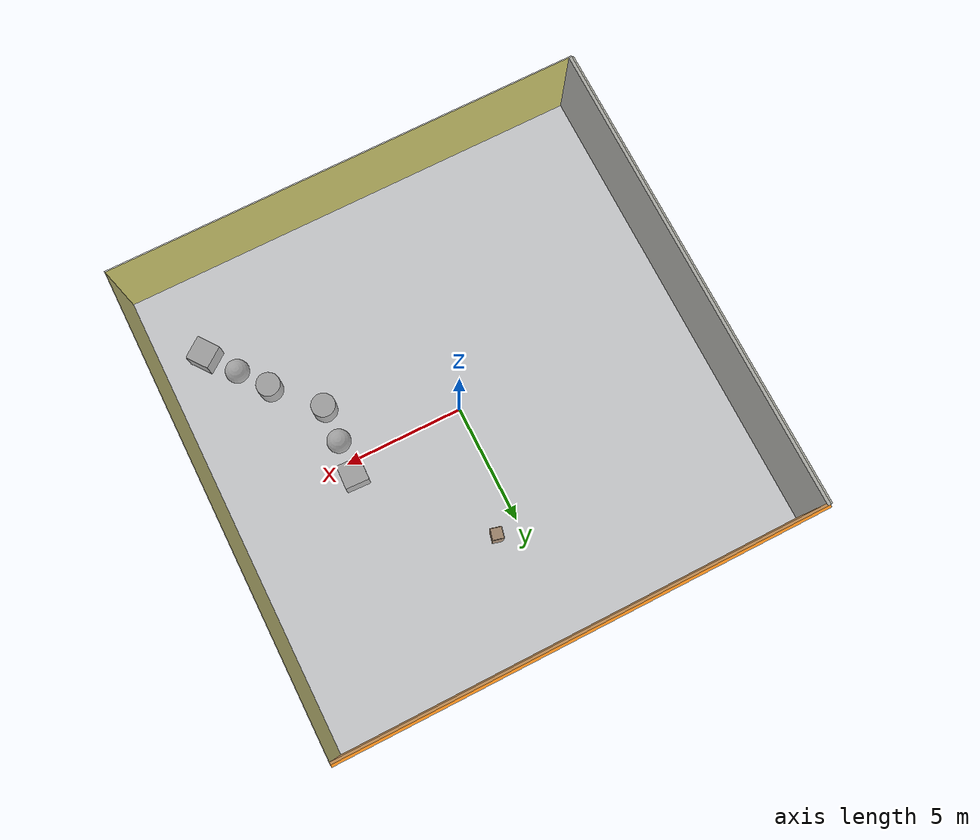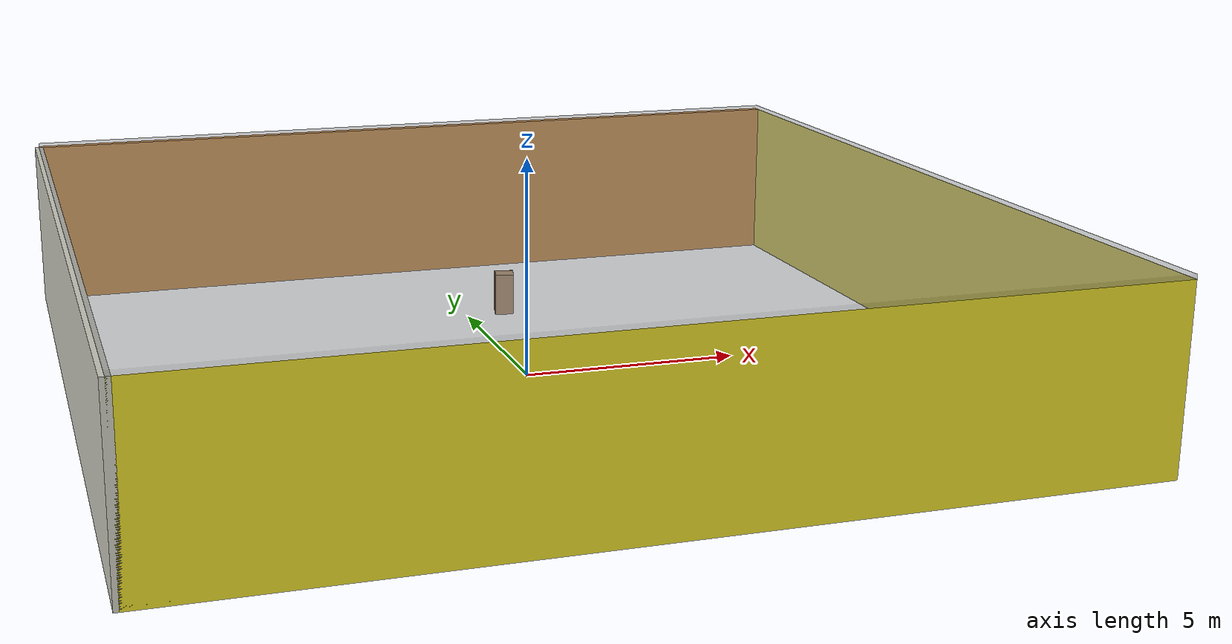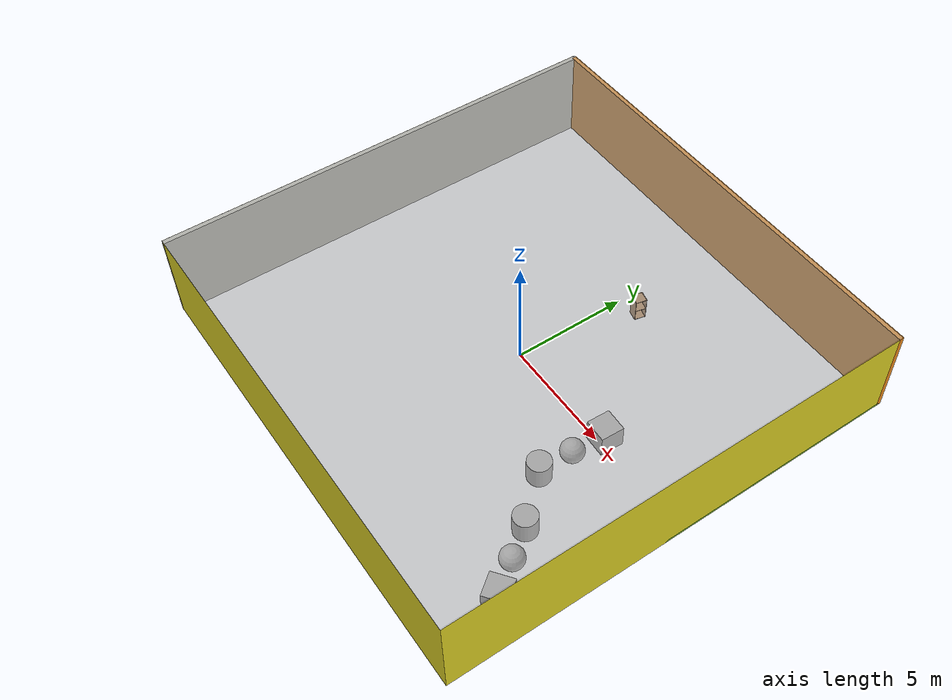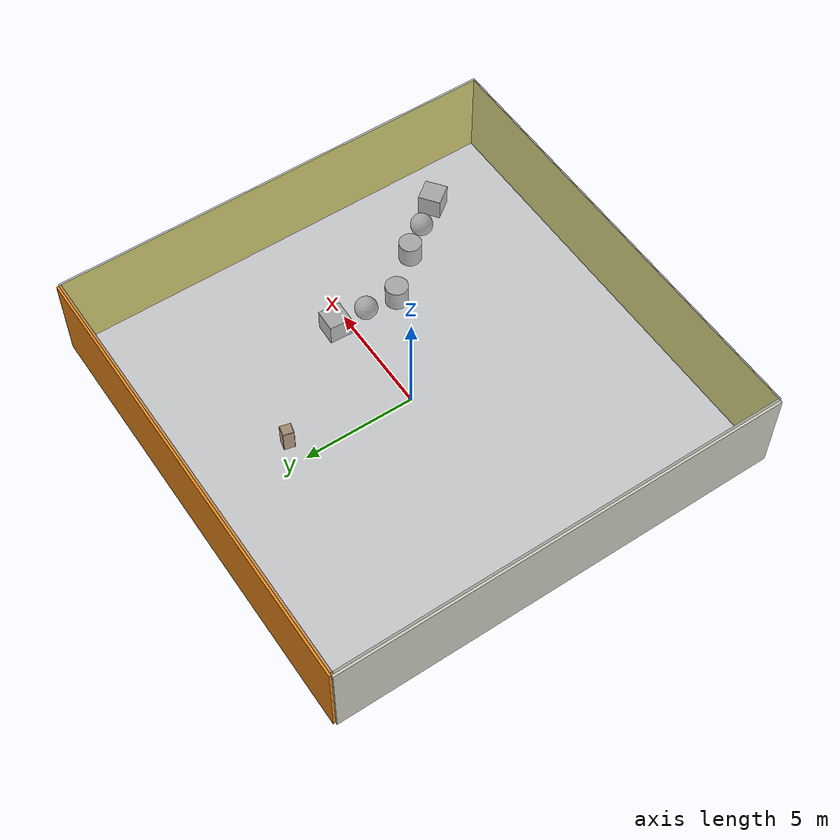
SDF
<sdf version="1.4">
 <world name="default">
  <physics type="ode">
   <max_step_size>0.001</max_step_size>
   <real_time_factor>1</real_time_factor>
   <real_time_update_rate>1000</real_time_update_rate>
   <gravity>0 0 -9.8</gravity>
  </physics>
  <scene><ambient>0.4 0.4 0.4 1</ambient><background>0.7 0.7 0.7 1</background><shadows>1</shadows></scene>
  <model name="Surrounding">
   <static>1</static>
   <link name="Ceiling">
    <collision name="Ceiling_Collision"><geometry><box><size>20 20 0.1</size></box></geometry></collision>
    <visual name="Ceiling_Visual">
     <geometry><box><size>20 20 0.1</size></box></geometry>
     <material>
      <script><uri>file://media/materials/scripts/gazebo.material</uri><name>Gazebo/GreyTransparent</name></script>
     </material>
    </visual>
    <pose>0 0 4.05 0 0 0</pose>
   </link>
   <link name="Wall_South">
    <collision name="Wall_South_Collision">
     <geometry><box><size>20 0 4</size></box></geometry>
     <pose>0 0 2 0 -0 0</pose>
    </collision>
    <visual name="Wall_South_Visual">
     <pose>0 0 2 0 -0 0</pose>
     <geometry><box><size>20 0 4</size></box></geometry>
     <material>
      <script><uri>file://media/materials/scripts/gazebo.material</uri><name>Gazebo/Yellow</name></script>
     </material>
    </visual>
    <velocity_decay><linear>0</linear><angular>0</angular></velocity_decay>
    <pose>0 -10 0 0 -0 0</pose>
   </link>
   <link name="Wall_East">
    <collision name="Wall_21_Collision">
     <geometry><box><size>20 0 4</size></box></geometry>
     <pose>0 0 2 0 -0 0</pose>
    </collision>
    <visual name="Wall_21_Visual">
     <pose>0 0 2 0 -0 0</pose>
     <geometry><box><size>20 0 4</size></box></geometry>
     <material>
      <script><uri>file://media/materials/scripts/gazebo.material</uri><name>Gazebo/YellowGlow</name></script>
     </material>
    </visual>
    <velocity_decay><linear>0</linear><angular>0</angular></velocity_decay>
    <pose>10 0 0 0 -0 1.5708</pose>
   </link>
   <link name="Wall_North">
    <collision name="Wall_22_Collision">
     <geometry><box><size>20 0.2 4</size></box></geometry>
     <pose>0 0 2 0 -0 0</pose>
    </collision>
    <visual name="Wall_22_Visual">
     <pose>0 0 2 0 -0 0</pose>
     <geometry><box><size>20 0.2 4</size></box></geometry>
     <material>
      <script><uri>file://media/materials/scripts/gazebo.material</uri><name>Gazebo/Orange</name></script>
     </material>
    </visual>
    <velocity_decay><linear>0</linear><angular>0</angular></velocity_decay>
    <pose>0 10 0 0 -0 0</pose>
   </link>
   <link name="Wall_West">
    <collision name="Wall_23_Collision">
     <geometry><box><size>20 0.2 4</size></box></geometry>
     <pose>0 0 2 0 -0 0</pose>
    </collision>
    <visual name="Wall_23_Visual">
     <pose>0 0 2 0 -0 0</pose>
     <geometry><box><size>20 0.2 4</size></box></geometry>
     <material>
      <script><uri>file://media/materials/scripts/gazebo.material</uri><name>Gazebo/PaintedWall</name></script>
     </material>
    </visual>
    <velocity_decay><linear>0</linear><angular>0</angular></velocity_decay>
    <pose>-10 0 0 0 0 -1.5708</pose>
   </link>
   <link name="Ground_link">
    <collision name="collision">
     <pose>0 0 .05 0 -0 0</pose>
     <geometry><box><size>20 20 0.1</size></box></geometry>
    </collision>
    <visual name="visual">
     <pose>0 0 .05 0 -0 0</pose>
     <geometry><box><size>20 20 0.1</size></box></geometry>
     <material>
      <script><uri>file://media/materials/scripts/gazebo.material</uri><name>Gazebo/GreenTransparent</name></script>
     </material>
    </visual>
   </link>
   <static>1</static>
  </model>
  <spherical_coordinates>
   <surface_model>EARTH_WGS84</surface_model>
   <latitude_deg>0</latitude_deg>
   <longitude_deg>0</longitude_deg>
   <elevation>0</elevation>
   <heading_deg>0</heading_deg>
  </spherical_coordinates>
  <light name="lightball_0" type="diffuse">
   <diffuse>0.8 0.8 0.8 1</diffuse>
   <specular>0.2 0.2 0.2 1</specular>
   <attenuation>
    <range>100</range>
    <constant>0.7</constant>
    <linear>0.01</linear>
    <quadratic>0.001</quadratic>
   </attenuation>
   <direction>-0.5 0.1 -0.9</direction>
   <pose>4.60251158934 8.21152684923 3.02824911476 0 0 0</pose>
  </light>
  <light name="lightball_1" type="diffuse">
   <diffuse>0.8 0.8 0.8 1</diffuse>
   <specular>0.2 0.2 0.2 1</specular>
   <attenuation>
    <range>100</range>
    <constant>0.7</constant>
    <linear>0.01</linear>
    <quadratic>0.001</quadratic>
   </attenuation>
   <direction>-0.5 0.1 -0.9</direction>
   <pose>2.30812771976 9.21851405827 3.70482765591 0 0 0</pose>
  </light>
  <light name="lightball_2" type="diffuse">
   <diffuse>0.8 0.8 0.8 1</diffuse>
   <specular>0.2 0.2 0.2 1</specular>
   <attenuation>
    <range>100</range>
    <constant>0.7</constant>
    <linear>0.01</linear>
    <quadratic>0.001</quadratic>
   </attenuation>
   <direction>-0.5 0.1 -0.9</direction>
   <pose>4.779148598 9.22614431911 1.0021228502 0 0 0</pose>
  </light>
  <light name="lightball_3" type="diffuse">
   <diffuse>0.8 0.8 0.8 1</diffuse>
   <specular>0.2 0.2 0.2 1</specular>
   <attenuation>
    <range>100</range>
    <constant>0.7</constant>
    <linear>0.01</linear>
    <quadratic>0.001</quadratic>
   </attenuation>
   <direction>-0.5 0.1 -0.9</direction>
   <pose>5.35242984814 -8.96708620782 2.67194139498 0 0 0</pose>
  </light>
  <light name="lightball_4" type="diffuse">
   <diffuse>0.8 0.8 0.8 1</diffuse>
   <specular>0.2 0.2 0.2 1</specular>
   <attenuation>
    <range>100</range>
    <constant>0.7</constant>
    <linear>0.01</linear>
    <quadratic>0.001</quadratic>
   </attenuation>
   <direction>-0.5 0.1 -0.9</direction>
   <pose>-0.101368413506 -0.697186795732 1.15822376176 0 0 0</pose>
  </light>
  <light name="lightball_5" type="diffuse">
   <diffuse>0.8 0.8 0.8 1</diffuse>
   <specular>0.2 0.2 0.2 1</specular>
   <attenuation>
    <range>100</range>
    <constant>0.7</constant>
    <linear>0.01</linear>
    <quadratic>0.001</quadratic>
   </attenuation>
   <direction>-0.5 0.1 -0.9</direction>
   <pose>-8.6591446703 -8.38269159293 2.12978727971 0 0 0</pose>
  </light>
  <light name="lightball_6" type="diffuse">
   <diffuse>0.8 0.8 0.8 1</diffuse>
   <specular>0.2 0.2 0.2 1</specular>
   <attenuation>
    <range>100</range>
    <constant>0.7</constant>
    <linear>0.01</linear>
    <quadratic>0.001</quadratic>
   </attenuation>
   <direction>-0.5 0.1 -0.9</direction>
   <pose>1.21067700168 6.44049193282 3.0605594295 0 0 0</pose>
  </light>
  <light name="lightball_7" type="diffuse">
   <diffuse>0.8 0.8 0.8 1</diffuse>
   <specular>0.2 0.2 0.2 1</specular>
   <attenuation>
    <range>100</range>
    <constant>0.7</constant>
    <linear>0.01</linear>
    <quadratic>0.001</quadratic>
   </attenuation>
   <direction>-0.5 0.1 -0.9</direction>
   <pose>5.45595173007 4.4201257225 2.15304164216 0 0 0</pose>
  </light>
  <light name="lightball_8" type="diffuse">
   <diffuse>0.8 0.8 0.8 1</diffuse>
   <specular>0.2 0.2 0.2 1</specular>
   <attenuation>
    <range>100</range>
    <constant>0.7</constant>
    <linear>0.01</linear>
    <quadratic>0.001</quadratic>
   </attenuation>
   <direction>-0.5 0.1 -0.9</direction>
   <pose>0.272736148726 -1.18149514772 0.952905856113 0 0 0</pose>
  </light>
  <light name="lightball_9" type="diffuse">
   <diffuse>0.8 0.8 0.8 1</diffuse>
   <specular>0.2 0.2 0.2 1</specular>
   <attenuation>
    <range>100</range>
    <constant>0.7</constant>
    <linear>0.01</linear>
    <quadratic>0.001</quadratic>
   </attenuation>
   <direction>-0.5 0.1 -0.9</direction>
   <pose>-4.35673607634 9.16949687482 2.06443309486 0 0 0</pose>
  </light>
  <light name="lightball_10" type="diffuse">
   <diffuse>0.8 0.8 0.8 1</diffuse>
   <specular>0.2 0.2 0.2 1</specular>
   <attenuation>
    <range>100</range>
    <constant>0.7</constant>
    <linear>0.01</linear>
    <quadratic>0.001</quadratic>
   </attenuation>
   <direction>-0.5 0.1 -0.9</direction>
   <pose>-0.533083529975 1.23277314363 2.74092762162 0 0 0</pose>
  </light>
  <light name="lightball_11" type="diffuse">
   <diffuse>0.8 0.8 0.8 1</diffuse>
   <specular>0.2 0.2 0.2 1</specular>
   <attenuation>
    <range>100</range>
    <constant>0.7</constant>
    <linear>0.01</linear>
    <quadratic>0.001</quadratic>
   </attenuation>
   <direction>-0.5 0.1 -0.9</direction>
   <pose>3.75721590536 -1.09472509503 1.62224877621 0 0 0</pose>
  </light>
  <include><uri>model://cabinet</uri><pose>1.00654224546 5.21842437124 0 0 0 2.90307749977</pose></include>
  <include>
   <uri>model://textured_shapes</uri>
   <pose>4.89290910482 -1.02446152745 0 0 0 3.09872617501</pose>
  </include>
  <include>
   <uri>model://textured_shapes</uri>
   <pose>7.33911036108 -5.49544878734 0 0 0 0.643137533665</pose>
  </include>
 </world>
</sdf>

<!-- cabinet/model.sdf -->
<sdf version="1.5">
  <model name="cabinet">
    <static>true</static>
    <link name="cabinet_bottom_plate">
      <inertial>
        <pose>0 0 -1 0 0 0</pose>
        <inertia>
          <ixx>2.050000</ixx>
          <ixy>0</ixy>
          <ixz>0</ixz>
          <iyy>2.050000</iyy>
          <iyz>0</iyz>
          <izz>2.050000</izz>
        </inertia>
        <mass>25.000000</mass>
      </inertial>
      <collision name="cabinet_bottom_plate_geom">
        <pose>0 0 0.010000 0 0 0</pose>
        <geometry>
          <box>
            <size>0.450000 0.450000 0.020000</size>
          </box>
        </geometry>
      </collision>
      <visual name="cabinet_bottom_plate_geom_visual">
        <pose>0 0 0.010000 0 0 0</pose>
        <geometry>
          <box>
            <size>0.450000 0.450000 0.020000</size>
          </box>
        </geometry>
        <material>
          <script>
            <uri>model://media/materials/scripts/gazebo.material</uri>
            <name>Gazebo/Wood</name>
          </script>
        </material>
      </visual>
      <collision name="cabinet_bottom_plate_geom_cabinet_back_plate">
        <pose>0.235000 0 0.510000 0 0 0</pose>
        <geometry>
          <box>
            <size>0.020000 0.450000 1.020000</size>
          </box>
        </geometry>
      </collision>
      <visual name="cabinet_bottom_plate_geom_cabinet_back_plate_visual">
        <pose>0.235000 0 0.510000 0 0 0</pose>
        <geometry>
          <box>
            <size>0.020000 0.450000 1.020000</size>
          </box>
        </geometry>
        <material>
          <script>
            <uri>model://media/materials/scripts/gazebo.material</uri>
            <name>Gazebo/Wood</name>
          </script>
        </material>
      </visual>
      <collision name="cabinet_bottom_plate_geom_cabinet_left_plate">
        <pose>0 0.235000 0.510000 0 0 0</pose>
        <geometry>
          <box>
            <size>0.450000 0.020000 1.020000</size>
          </box>
        </geometry>
      </collision>
      <visual name="cabinet_bottom_plate_geom_cabinet_left_plate_visual">
        <pose>0 0.235000 0.510000 0 0 0</pose>
        <geometry>
          <box>
            <size>0.450000 0.020000 1.020000</size>
          </box>
        </geometry>
        <material>
          <script>
            <uri>model://media/materials/scripts/gazebo.material</uri>
            <name>Gazebo/Wood</name>
          </script>
        </material>
      </visual>
      <collision name="cabinet_bottom_plate_geom_cabinet_middle_plate">
        <pose>0 0 0.510000 0 0 0</pose>
        <geometry>
          <box>
            <size>0.450000 0.450000 0.020000</size>
          </box>
        </geometry>
      </collision>
      <visual name="cabinet_bottom_plate_geom_cabinet_middle_plate_visual">
        <pose>0 0 0.510000 0 0 0</pose>
        <geometry>
          <box>
            <size>0.450000 0.450000 0.020000</size>
          </box>
        </geometry>
        <material>
          <script>
            <uri>model://media/materials/scripts/gazebo.material</uri>
            <name>Gazebo/Wood</name>
          </script>
        </material>
      </visual>
      <collision name="cabinet_bottom_plate_geom_cabinet_right_plate">
        <pose>0 -0.235000 0.510000 0 0 0</pose>
        <geometry>
          <box>
            <size>0.450000 0.020000 1.020000</size>
          </box>
        </geometry>
      </collision>
      <visual name="cabinet_bottom_plate_geom_cabinet_right_plate_visual">
        <pose>0 -0.235000 0.510000 0 0 0</pose>
        <geometry>
          <box>
            <size>0.450000 0.020000 1.020000</size>
          </box>
        </geometry>
        <material>
          <script>
            <uri>model://media/materials/scripts/gazebo.material</uri>
            <name>Gazebo/Wood</name>
          </script>
        </material>
      </visual>
      <collision name="cabinet_bottom_plate_geom_cabinet_top_plate">
        <pose>0 0 1.010000 0 0 0</pose>
        <geometry>
          <box>
            <size>0.450000 0.450000 0.020000</size>
          </box>
        </geometry>
      </collision>
      <visual name="cabinet_bottom_plate_geom_cabinet_top_plate_visual">
        <pose>0 0 1.010000 0 0 0</pose>
        <geometry>
          <box>
            <size>0.450000 0.450000 0.020000</size>
          </box>
        </geometry>
        <material>
          <script>
            <uri>model://media/materials/scripts/gazebo.material</uri>
            <name>Gazebo/Wood</name>
          </script>
        </material>
      </visual>
    </link>
  </model>
</sdf>

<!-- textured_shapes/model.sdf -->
<sdf version="1.6">
  <model name="textured_shapes">
    <pose>0 0 0.5 0 0 0</pose>
    <link name="box">
      <pose>0 -1.5 0 0 0 0</pose>
      <collision name="collision">
        <geometry>
          <box>
            <size>1 1 1</size>
          </box>
        </geometry>
      </collision>
      <visual name="visual">
        <geometry>
          <box>
            <size>1 1 1</size>
          </box>
        </geometry>
        <material>
          <script>
            <uri>model://../model_source/models/textured_shapes/materials/scripts</uri>
            <uri>model://../model_source/models/textured_shapes/materials/textures</uri>
            <name>TexturedShape/Squares</name>
          </script>
        </material>
      </visual>
    </link>
    <link name="sphere">
      <collision name="collision">
        <geometry>
          <sphere>
            <radius>0.5</radius>
          </sphere>
        </geometry>
      </collision>
      <visual name="visual">
        <geometry>
          <sphere>
            <radius>0.5</radius>
          </sphere>
        </geometry>
        <material>
          <script>
            <uri>model://../model_source/models/textured_shapes/materials/scripts</uri>
            <uri>model://../model_source/models/textured_shapes/materials/textures</uri>
            <name>TexturedShape/Squares</name>
          </script>
        </material>
      </visual>
    </link>
    <link name="cylinder">
      <pose>0 1.5 0 0 0 0</pose>
      <collision name="collision">
        <geometry>
          <cylinder>
            <radius>0.5</radius>
            <length>1</length>
          </cylinder>
        </geometry>
      </collision>
      <visual name="visual">
        <geometry>
          <cylinder>
            <radius>0.5</radius>
            <length>1</length>
          </cylinder>
        </geometry>
        <material>
          <script>
            <uri>model://../model_source/models/textured_shapes/materials/scripts</uri>
            <uri>model://../model_source/models/textured_shapes/materials/textures</uri>
            <name>TexturedShape/Squares</name>
          </script>
        </material>
      </visual>
    </link>
  </model>
</sdf>
